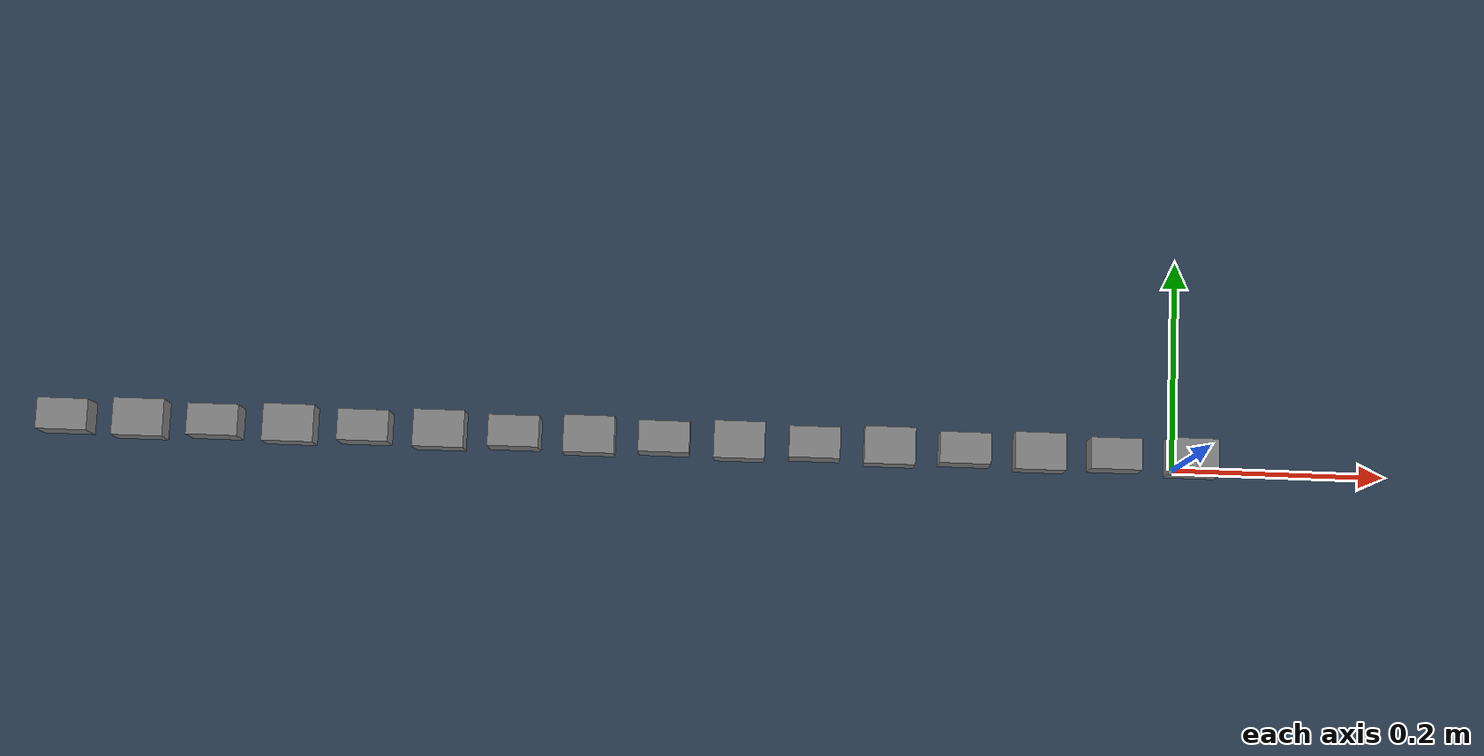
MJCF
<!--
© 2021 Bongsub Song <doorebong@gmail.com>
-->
<!-- All right reserved -->
 <!-- Description : BRM snake robot Mujoco simulation xml -->

<mujoco model="snake_v210623">

    <compiler inertiafromgeom="true" angle="degree" convexhull="false"/>

    <option timestep="0.005" iterations="50" tolerance="1e-10" solver="Newton" jacobian="dense" cone="pyramidal"/>

    <size nconmax="500" njmax="2000" nstack="10000"/>

    <visual>
        <map force="0.1" zfar="30"/>
        <rgba haze="0.15 0.25 0.35 1"/>
        <quality shadowsize="2048"/>
        <global offwidth="800" offheight="800"/>
    </visual>

    <asset>
        <texture type="skybox" builtin="gradient" rgb1="0.3 0.5 0.7" rgb2="0 0 0" width="512" height="512"/>

        <texture name="texplane" type="2d" builtin="checker" rgb1=".2 .3 .4" rgb2=".1 0.15 0.2" width="512" height="512" mark="cross" markrgb=".8 .8 .8"/>

        <texture name="texgeom" type="cube" builtin="flat" mark="cross" width="127" height="1278"
            rgb1="0.8 0.6 0.4" rgb2="0.8 0.6 0.4" markrgb="1 1 1" random="0.01"/>

        <material name="matplane" reflectance="0.3" texture="texplane" texrepeat="1 1" texuniform="true"/>

        <material name="matgeom" texture="texgeom" texuniform="true" rgba="0.8 0.6 .4 1"/>

        <!-- Pipe Meshes -->
        <mesh name="pipe100" file="./asset/Pipe-100mm-3T_low.stl"/>
    </asset>

    <worldbody>

        <geom name="floor" pos="0 0 0" size="0 0 .25" type="plane" material="matplane" condim="3" />

        <light directional="false" diffuse=".2 .2 .2" specular="0 0 0" pos="0 0 5" dir="0 0 -1" castshadow="false"/>

    <!-- Snake -->
        <body name="head" pos="0 0 0.1">
            <inertial pos="0 0 0" quat="0 0.707107 0 0.707107" mass="0.1" diaginertia="0.0000194 0.0000174 0.0000115" />
            <freejoint name="root"/>
            <geom size="0.02325 0.017 0.01425" type="box" friction="0 0 0.005" /> <!-- default friction = "1 0.005 0.0001" -->
            <body name="body1" pos="-0.0135 0 0">
                <inertial pos="-0.0565 0 0" quat="0 0.707107 0 0.707107" mass="0.1" diaginertia="0.0000194 0.0000174 0.0000115" />
                <joint name="joint1" type="hinge" pos="0 0 0" axis="0 1 0" limited="true" range="-90 90" damping="0.6" stiffness="0" armature="0.05" />
                <geom size="0.02325 0.01425 0.017" pos="-0.0565 0 0" type="box" friction="0 0 0.005" />
                <body name="body2" pos="-0.0685 0 0">
                    <inertial pos="-0.0565 0 0" quat="0 0.707107 0 0.707107" mass="0.1" diaginertia="0.0000194 0.0000174 0.0000115" />
                    <joint name="joint2" type="hinge" pos="0 0 0" axis="0 0 1" limited="true" range="-90 90" damping="0.6" stiffness="0" armature="0.05" />
                    <geom size="0.02325 0.017 0.01425" pos="-0.0565 0 0" type="box" friction="0 0 0.005" />
                    <body name="body3" pos="-0.0685 0 0">
                        <inertial pos="-0.0565 0 0" quat="0 0.707107 0 0.707107" mass="0.1" diaginertia="0.0000194 0.0000174 0.0000115" />
                        <joint name="joint3" type="hinge" pos="0 0 0" axis="0 1 0" limited="true" range="-90 90" damping="0.6" stiffness="0" armature="0.05" />
                        <geom size="0.02325 0.01425 0.017" pos="-0.0565 0 0" type="box" friction="0 0 0.005" />
                        <body name="body4" pos="-0.0685 0 0">
                            <inertial pos="-0.0565 0 0" quat="0 0.707107 0 0.707107" mass="0.1" diaginertia="0.0000194 0.0000174 0.0000115" />
                            <joint name="joint4" type="hinge" pos="0 0 0" axis="0 0 1" limited="true" range="-90 90" damping="0.6" stiffness="0" armature="0.05" />
                            <geom size="0.02325 0.017 0.01425" pos="-0.0565 0 0" type="box" friction="0 0 0.005" />
                            <body name="body5" pos="-0.0685 0 0">
                                <inertial pos="-0.0565 0 0" quat="0 0.707107 0 0.707107" mass="0.1" diaginertia="0.0000194 0.0000174 0.0000115" />
                                <joint name="joint5" type="hinge" pos="0 0 0" axis="0 1 0" limited="true" range="-90 90" damping="0.6" stiffness="0" armature="0.05" />
                                <geom size="0.02325 0.01425 0.017" pos="-0.0565 0 0" type="box" friction="0 0 0.005" />
                                <body name="body6" pos="-0.0685 0 0">
                                    <inertial pos="-0.0565 0 0" quat="0 0.707107 0 0.707107" mass="0.1" diaginertia="0.0000194 0.0000174 0.0000115" />
                                    <joint name="joint6" type="hinge" pos="0 0 0" axis="0 0 1" limited="true" range="-90 90" damping="0.6" stiffness="0" armature="0.05" />
                                    <geom size="0.02325 0.017 0.01425" pos="-0.0565 0 0" type="box" friction="0 0 0.005" />
                                    <body name="body7" pos="-0.0685 0 0">
                                        <inertial pos="-0.0565 0 0" quat="0 0.707107 0 0.707107" mass="0.1" diaginertia="0.0000194 0.0000174 0.0000115" />
                                        <joint name="joint7" type="hinge" pos="0 0 0" axis="0 1 0" limited="true" range="-90 90" damping="0.6" stiffness="0" armature="0.05" />
                                        <geom size="0.02325 0.01425 0.017" pos="-0.0565 0 0" type="box" friction="0 0 0.005" />
                                        <body name="body8" pos="-0.0685 0 0">
                                            <inertial pos="-0.0565 0 0" quat="0 0.707107 0 0.707107" mass="0.1" diaginertia="0.0000194 0.0000174 0.0000115" />
                                            <joint name="joint8" type="hinge" pos="0 0 0" axis="0 0 1" limited="true" range="-90 90" damping="0.6" stiffness="0" armature="0.05" />
                                            <geom size="0.02325 0.017 0.01425" pos="-0.0565 0 0" type="box" friction="0 0 0.005" />
                                            <body name="body9" pos="-0.0685 0 0">
                                                <inertial pos="-0.0565 0 0" quat="0 0.707107 0 0.707107" mass="0.1" diaginertia="0.0000194 0.0000174 0.0000115" />
                                                <joint name="joint9" type="hinge" pos="0 0 0" axis="0 1 0" limited="true" range="-90 90" damping="0.6" stiffness="0" armature="0.05" />
                                                <geom size="0.02325 0.01425 0.017" pos="-0.0565 0 0" type="box" friction="0 0 0.005" />
                                                <body name="body10" pos="-0.0685 0 0">
                                                    <inertial pos="-0.0565 0 0" quat="0 0.707107 0 0.707107" mass="0.1" diaginertia="0.0000194 0.0000174 0.0000115" />
                                                    <joint name="joint10" type="hinge" pos="0 0 0" axis="0 0 1" limited="true" range="-90 90" damping="0.6" stiffness="0" armature="0.05" />
                                                    <geom size="0.02325 0.017 0.01425" pos="-0.0565 0 0" type="box" friction="0 0 0.005" />
                                                    <body name="body11" pos="-0.0685 0 0">
                                                        <inertial pos="-0.0565 0 0" quat="0 0.707107 0 0.707107" mass="0.1" diaginertia="0.0000194 0.0000174 0.0000115" />
                                                        <joint name="joint11" type="hinge" pos="0 0 0" axis="0 1 0" limited="true" range="-90 90" damping="0.6" stiffness="0" armature="0.05" />
                                                        <geom size="0.02325 0.01425 0.017" pos="-0.0565 0 0" type="box" friction="0 0 0.005" />
                                                        <body name="body12" pos="-0.0685 0 0">
                                                            <inertial pos="-0.0565 0 0" quat="0 0.707107 0 0.707107" mass="0.1" diaginertia="0.0000194 0.0000174 0.0000115" />
                                                            <joint name="joint12" type="hinge" pos="0 0 0" axis="0 0 1" limited="true" range="-90 90" damping="0.6" stiffness="0" armature="0.05" />
                                                            <geom size="0.02325 0.017 0.01425" pos="-0.0565 0 0" type="box" friction="0 0 0.005" />
                                                            <body name="body13" pos="-0.0685 0 0">
                                                                <inertial pos="-0.0565 0 0" quat="0 0.707107 0 0.707107" mass="0.1" diaginertia="0.0000194 0.0000174 0.0000115" />
                                                                <joint name="joint13" type="hinge" pos="0 0 0" axis="0 1 0" limited="true" range="-90 90" damping="0.6" stiffness="0" armature="0.05" />
                                                                <geom size="0.02325 0.01425 0.017" pos="-0.0565 0 0" type="box" friction="0 0 0.005" />
                                                                <body name="body14" pos="-0.0685 0 0">
                                                                    <inertial pos="-0.0565 0 0" quat="0 0.707107 0 0.707107" mass="0.1" diaginertia="0.0000194 0.0000174 0.0000115" />
                                                                    <joint name="joint14" type="hinge" pos="0 0 0" axis="0 0 1" limited="true" range="-90 90" damping="0.6" stiffness="0" armature="0.05" />
                                                                    <geom size="0.02325 0.017 0.01425" pos="-0.0565 0 0" type="box" friction="0 0 0.005" />
                                                                    <body name="tail" pos="-0.0685 0 0">
                                                                        <inertial pos="-0.0565 0 0" quat="0 0.707107 0 0.707107" mass="0.1" diaginertia="0.0000194 0.0000174 0.0000115" />
                                                                        <joint name="joint15" type="hinge" pos="0 0 0" axis="0 1 0" limited="true" range="-90 90" damping="0.6" stiffness="0" armature="0.05" />
                                                                        <geom size="0.02325 0.01425 0.017" pos="-0.0565 0 0" type="box" friction="0 0 0.005" />
                                                                    </body>
                                                                </body>
                                                            </body>
                                                        </body>
                                                    </body>
                                                </body>
                                            </body>
                                        </body>
                                    </body>
                                </body>
                            </body>
                        </body>
                    </body>
                </body>
            </body>
        </body>
    </worldbody>

    <actuator>
        <position name="servo_1" ctrllimited="true" ctrlrange="-1.5708 1.5708" forcelimited="true" forcerange="-3.0 3.0" gear="1" joint="joint1" kp="4"/>
        <position name="servo_2" ctrllimited="true" ctrlrange="-1.5708 1.5708" forcelimited="true" forcerange="-3.0 3.0" gear="1" joint="joint2" kp="4"/>
        <position name="servo_3" ctrllimited="true" ctrlrange="-1.5708 1.5708" forcelimited="true" forcerange="-3.0 3.0" gear="1" joint="joint3" kp="4"/>
        <position name="servo_4" ctrllimited="true" ctrlrange="-1.5708 1.5708" forcelimited="true" forcerange="-3.0 3.0" gear="1" joint="joint4" kp="4"/>
        <position name="servo_5" ctrllimited="true" ctrlrange="-1.5708 1.5708" forcelimited="true" forcerange="-3.0 3.0" gear="1" joint="joint5" kp="4"/>
        <position name="servo_6" ctrllimited="true" ctrlrange="-1.5708 1.5708" forcelimited="true" forcerange="-3.0 3.0" gear="1" joint="joint6" kp="4"/>
        <position name="servo_7" ctrllimited="true" ctrlrange="-1.5708 1.5708" forcelimited="true" forcerange="-3.0 3.0" gear="1" joint="joint7" kp="4"/>
        <position name="servo_8" ctrllimited="true" ctrlrange="-1.5708 1.5708" forcelimited="true" forcerange="-3.0 3.0" gear="1" joint="joint8" kp="4"/>
        <position name="servo_9" ctrllimited="true" ctrlrange="-1.5708 1.5708" forcelimited="true" forcerange="-3.0 3.0" gear="1" joint="joint9" kp="4"/>
        <position name="servo_10" ctrllimited="true" ctrlrange="-1.5708 1.5708" forcelimited="true" forcerange="-3.0 3.0" gear="1" joint="joint10" kp="4"/>
        <position name="servo_11" ctrllimited="true" ctrlrange="-1.5708 1.5708" forcelimited="true" forcerange="-3.0 3.0" gear="1" joint="joint11" kp="4"/>
        <position name="servo_12" ctrllimited="true" ctrlrange="-1.5708 1.5708" forcelimited="true" forcerange="-3.0 3.0" gear="1" joint="joint12" kp="4"/>
        <position name="servo_13" ctrllimited="true" ctrlrange="-1.5708 1.5708" forcelimited="true" forcerange="-3.0 3.0" gear="1" joint="joint13" kp="4"/>
        <position name="servo_14" ctrllimited="true" ctrlrange="-1.5708 1.5708" forcelimited="true" forcerange="-3.0 3.0" gear="1" joint="joint14" kp="4"/>
        <position name="servo_15" ctrllimited="true" ctrlrange="-1.5708 1.5708" forcelimited="true" forcerange="-3.0 3.0" gear="1" joint="joint15" kp="4"/>

    </actuator>
</mujoco>
